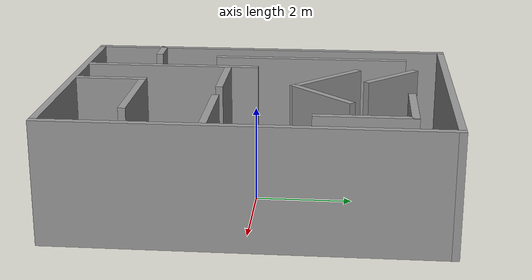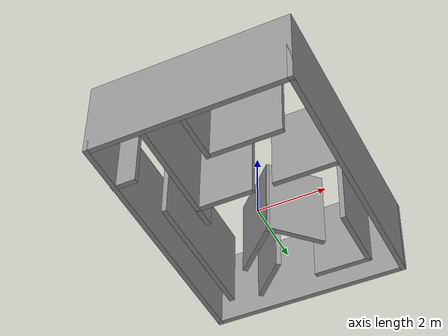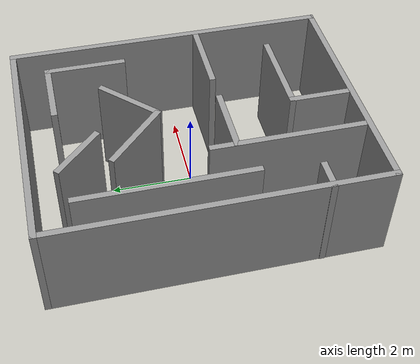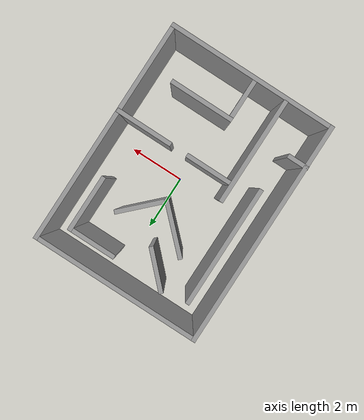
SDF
<?xml version='1.0'?>
<sdf version='1.7'>
  <model name='env02'>
    <pose>-0.178481 0.02134 0 0 -0 0</pose>
    <link name='Wall_13'>
      <collision name='Wall_13_Collision'>
        <geometry>
          <box>
            <size>1.5 0.15 2.5</size>
          </box>
        </geometry>
        <pose>0 0 1.25 0 -0 0</pose>
      </collision>
      <visual name='Wall_13_Visual'>
        <pose>0 0 1.25 0 -0 0</pose>
        <geometry>
          <box>
            <size>1.5 0.15 2.5</size>
          </box>
        </geometry>
        <material>
          <script>
            <uri>file://media/materials/scripts/gazebo.material</uri>
            <name>Gazebo/Grey</name>
          </script>
          <ambient>1 1 1 1</ambient>
        </material>
        <meta>
          <layer>0</layer>
        </meta>
      </visual>
      <pose>-0.751841 2.75701 0 0 -0 -0.785398</pose>
    </link>
    <link name='Wall_2'>
      <collision name='Wall_2_Collision'>
        <geometry>
          <box>
            <size>8 0.15 2.5</size>
          </box>
        </geometry>
        <pose>0 0 1.25 0 -0 0</pose>
      </collision>
      <visual name='Wall_2_Visual'>
        <pose>0 0 1.25 0 -0 0</pose>
        <geometry>
          <box>
            <size>8 0.15 2.5</size>
          </box>
        </geometry>
        <material>
          <script>
            <uri>file://media/materials/scripts/gazebo.material</uri>
            <name>Gazebo/Grey</name>
          </script>
          <ambient>1 1 1 1</ambient>
        </material>
        <meta>
          <layer>0</layer>
        </meta>
      </visual>
      <pose>-2.91996 -0 0 0 -0 -1.5708</pose>
    </link>
    <link name='Wall_22'>
      <collision name='Wall_22_Collision'>
        <geometry>
          <box>
            <size>2 0.15 2.5</size>
          </box>
        </geometry>
        <pose>0 0 1.25 0 -0 0</pose>
      </collision>
      <visual name='Wall_22_Visual'>
        <pose>0 0 1.25 0 -0 0</pose>
        <geometry>
          <box>
            <size>2 0.15 2.5</size>
          </box>
        </geometry>
        <material>
          <script>
            <uri>file://media/materials/scripts/gazebo.material</uri>
            <name>Gazebo/Grey</name>
          </script>
          <ambient>1 1 1 1</ambient>
        </material>
        <meta>
          <layer>0</layer>
        </meta>
      </visual>
      <pose>2.18448 2.2064 0 0 -0 -1.5708</pose>
    </link>
    <link name='Wall_24'>
      <collision name='Wall_24_Collision'>
        <geometry>
          <box>
            <size>1.70028 0.15 2.5</size>
          </box>
        </geometry>
        <pose>0 0 1.25 0 -0 0</pose>
      </collision>
      <visual name='Wall_24_Visual'>
        <pose>0 0 1.25 0 -0 0</pose>
        <geometry>
          <box>
            <size>1.70028 0.15 2.5</size>
          </box>
        </geometry>
        <material>
          <script>
            <uri>file://media/materials/scripts/gazebo.material</uri>
            <name>Gazebo/Grey</name>
          </script>
          <ambient>1 1 1 1</ambient>
        </material>
        <meta>
          <layer>0</layer>
        </meta>
      </visual>
      <pose>1.39939 3.13139 0 0 -0 3.14159</pose>
    </link>
    <link name='Wall_26'>
      <collision name='Wall_26_Collision'>
        <geometry>
          <box>
            <size>1.94682 0.15 2.5</size>
          </box>
        </geometry>
        <pose>0 0 1.25 0 -0 0</pose>
      </collision>
      <visual name='Wall_26_Visual'>
        <pose>0 0 1.25 0 -0 0</pose>
        <geometry>
          <box>
            <size>1.94682 0.15 2.5</size>
          </box>
        </geometry>
        <material>
          <script>
            <uri>file://media/materials/scripts/gazebo.material</uri>
            <name>Gazebo/Grey</name>
          </script>
          <ambient>1 1 1 1</ambient>
        </material>
        <meta>
          <layer>0</layer>
        </meta>
      </visual>
      <pose>-0.506792 1.39452 0 0 -0 -0.767543</pose>
    </link>
    <link name='Wall_27'>
      <collision name='Wall_27_Collision'>
        <geometry>
          <box>
            <size>1.75 0.15 2.5</size>
          </box>
        </geometry>
        <pose>0 0 1.25 0 -0 0</pose>
      </collision>
      <visual name='Wall_27_Visual'>
        <pose>0 0 1.25 0 -0 0</pose>
        <geometry>
          <box>
            <size>1.75 0.15 2.5</size>
          </box>
        </geometry>
        <material>
          <script>
            <uri>file://media/materials/scripts/gazebo.material</uri>
            <name>Gazebo/Grey</name>
          </script>
          <ambient>1 1 1 1</ambient>
        </material>
        <meta>
          <layer>0</layer>
        </meta>
      </visual>
      <pose>0.705406 1.33638 0 0 -0 0.785398</pose>
    </link>
    <link name='Wall_30'>
      <collision name='Wall_30_Collision'>
        <geometry>
          <box>
            <size>3.75 0.15 2.5</size>
          </box>
        </geometry>
        <pose>0 0 1.25 0 -0 0</pose>
      </collision>
      <visual name='Wall_30_Visual'>
        <pose>0 0 1.25 0 -0 0</pose>
        <geometry>
          <box>
            <size>3.75 0.15 2.5</size>
          </box>
        </geometry>
        <material>
          <script>
            <uri>file://media/materials/scripts/gazebo.material</uri>
            <name>Gazebo/Grey</name>
          </script>
          <ambient>1 1 1 1</ambient>
        </material>
        <meta>
          <layer>0</layer>
        </meta>
      </visual>
      <pose>-1.2845 -1.99005 0 0 -0 -1.5708</pose>
    </link>
    <link name='Wall_34'>
      <collision name='Wall_34_Collision'>
        <geometry>
          <box>
            <size>1.75 0.15 2.5</size>
          </box>
        </geometry>
        <pose>0 0 1.25 0 -0 0</pose>
      </collision>
      <visual name='Wall_34_Visual'>
        <pose>0 0 1.25 0 -0 0</pose>
        <geometry>
          <box>
            <size>1.75 0.15 2.5</size>
          </box>
        </geometry>
        <material>
          <script>
            <uri>file://media/materials/scripts/gazebo.material</uri>
            <name>Gazebo/Grey</name>
          </script>
          <ambient>1 1 1 1</ambient>
        </material>
        <meta>
          <layer>0</layer>
        </meta>
      </visual>
      <pose>-0.477153 -0.7658 0 0 -0 0</pose>
    </link>
    <link name='Wall_4'>
      <collision name='Wall_4_Collision'>
        <geometry>
          <box>
            <size>6 0.15 2.5</size>
          </box>
        </geometry>
        <pose>0 0 1.25 0 -0 0</pose>
      </collision>
      <visual name='Wall_4_Visual'>
        <pose>0 0 1.25 0 -0 0</pose>
        <geometry>
          <box>
            <size>6 0.15 2.5</size>
          </box>
        </geometry>
        <material>
          <script>
            <uri>file://media/materials/scripts/gazebo.material</uri>
            <name>Gazebo/Grey</name>
          </script>
          <ambient>1 1 1 1</ambient>
        </material>
        <meta>
          <layer>0</layer>
        </meta>
      </visual>
      <pose>0.005038 -3.925 0 0 -0 0</pose>
    </link>
    <link name='Wall_41'>
      <collision name='Wall_41_Collision'>
        <geometry>
          <box>
            <size>2 0.15 2.5</size>
          </box>
        </geometry>
        <pose>0 0 1.25 0 -0 0</pose>
      </collision>
      <visual name='Wall_41_Visual'>
        <pose>0 0 1.25 0 -0 0</pose>
        <geometry>
          <box>
            <size>2 0.15 2.5</size>
          </box>
        </geometry>
        <material>
          <script>
            <uri>file://media/materials/scripts/gazebo.material</uri>
            <name>Gazebo/Grey</name>
          </script>
          <ambient>1 1 1 1</ambient>
        </material>
        <meta>
          <layer>0</layer>
        </meta>
      </visual>
      <pose>1.9842 -0.766011 0 0 -0 0</pose>
    </link>
    <link name='Wall_43'>
      <collision name='Wall_43_Collision'>
        <geometry>
          <box>
            <size>2.25 0.15 2.5</size>
          </box>
        </geometry>
        <pose>0 0 1.25 0 -0 0</pose>
      </collision>
      <visual name='Wall_43_Visual'>
        <pose>0 0 1.25 0 -0 0</pose>
        <geometry>
          <box>
            <size>2.25 0.15 2.5</size>
          </box>
        </geometry>
        <material>
          <script>
            <uri>file://media/materials/scripts/gazebo.material</uri>
            <name>Gazebo/Grey</name>
          </script>
          <ambient>1 1 1 1</ambient>
        </material>
        <meta>
          <layer>0</layer>
        </meta>
      </visual>
      <pose>0.92532 -2.43655 0 0 -0 3.14159</pose>
    </link>
    <link name='Wall_44'>
      <collision name='Wall_44_Collision'>
        <geometry>
          <box>
            <size>1.5 0.15 2.5</size>
          </box>
        </geometry>
        <pose>0 0 1.25 0 -0 0</pose>
      </collision>
      <visual name='Wall_44_Visual'>
        <pose>0 0 1.25 0 -0 0</pose>
        <geometry>
          <box>
            <size>1.5 0.15 2.5</size>
          </box>
        </geometry>
        <material>
          <script>
            <uri>file://media/materials/scripts/gazebo.material</uri>
            <name>Gazebo/Grey</name>
          </script>
          <ambient>1 1 1 1</ambient>
        </material>
        <meta>
          <layer>0</layer>
        </meta>
      </visual>
      <pose>-0.12468 -3.11155 0 0 -0 -1.5708</pose>
    </link>
    <link name='Wall_46'>
      <collision name='Wall_46_Collision'>
        <geometry>
          <box>
            <size>0.75 0.15 2.5</size>
          </box>
        </geometry>
        <pose>0 0 1.25 0 -0 0</pose>
      </collision>
      <visual name='Wall_46_Visual'>
        <pose>0 0 1.25 0 -0 0</pose>
        <geometry>
          <box>
            <size>0.75 0.15 2.5</size>
          </box>
        </geometry>
        <material>
          <script>
            <uri>file://media/materials/scripts/gazebo.material</uri>
            <name>Gazebo/Grey</name>
          </script>
          <ambient>1 1 1 1</ambient>
        </material>
        <meta>
          <layer>0</layer>
        </meta>
      </visual>
      <pose>-2.63004 -2.46285 0 0 -0 0</pose>
    </link>
    <link name='Wall_5'>
      <collision name='Wall_5_Collision'>
        <geometry>
          <box>
            <size>8 0.15 2.5</size>
          </box>
        </geometry>
        <pose>0 0 1.25 0 -0 0</pose>
      </collision>
      <visual name='Wall_5_Visual'>
        <pose>0 0 1.25 0 -0 0</pose>
        <geometry>
          <box>
            <size>8 0.15 2.5</size>
          </box>
        </geometry>
        <material>
          <script>
            <uri>file://media/materials/scripts/gazebo.material</uri>
            <name>Gazebo/Grey</name>
          </script>
          <ambient>1 1 1 1</ambient>
        </material>
        <meta>
          <layer>0</layer>
        </meta>
      </visual>
      <pose>2.93004 -0 0 0 -0 1.5708</pose>
    </link>
    <link name='Wall_6'>
      <collision name='Wall_6_Collision'>
        <geometry>
          <box>
            <size>6 0.15 2.5</size>
          </box>
        </geometry>
        <pose>0 0 1.25 0 -0 0</pose>
      </collision>
      <visual name='Wall_6_Visual'>
        <pose>0 0 1.25 0 -0 0</pose>
        <geometry>
          <box>
            <size>6 0.15 2.5</size>
          </box>
        </geometry>
        <material>
          <script>
            <uri>file://media/materials/scripts/gazebo.material</uri>
            <name>Gazebo/Grey</name>
          </script>
          <ambient>1 1 1 1</ambient>
        </material>
        <meta>
          <layer>0</layer>
        </meta>
      </visual>
      <pose>0.005038 3.925 0 0 -0 3.14159</pose>
    </link>
    <link name='Wall_9'>
      <collision name='Wall_9_Collision'>
        <geometry>
          <box>
            <size>4.25 0.15 2.5</size>
          </box>
        </geometry>
        <pose>0 0 1.25 0 -0 0</pose>
      </collision>
      <visual name='Wall_9_Visual'>
        <pose>0 0 1.25 0 -0 0</pose>
        <geometry>
          <box>
            <size>4.25 0.15 2.5</size>
          </box>
        </geometry>
        <material>
          <script>
            <uri>file://media/materials/scripts/gazebo.material</uri>
            <name>Gazebo/Grey</name>
          </script>
          <ambient>1 1 1 1</ambient>
        </material>
        <meta>
          <layer>0</layer>
        </meta>
      </visual>
      <pose>-2.13988 0.993974 0 0 -0 -1.5708</pose>
    </link>
    <static>1</static>
  </model>
</sdf>
